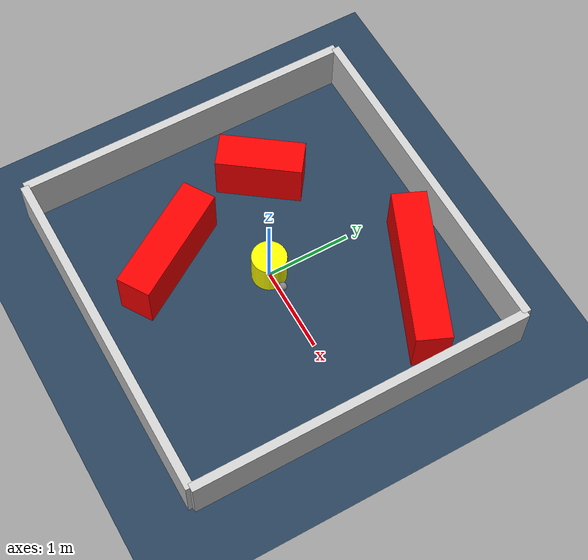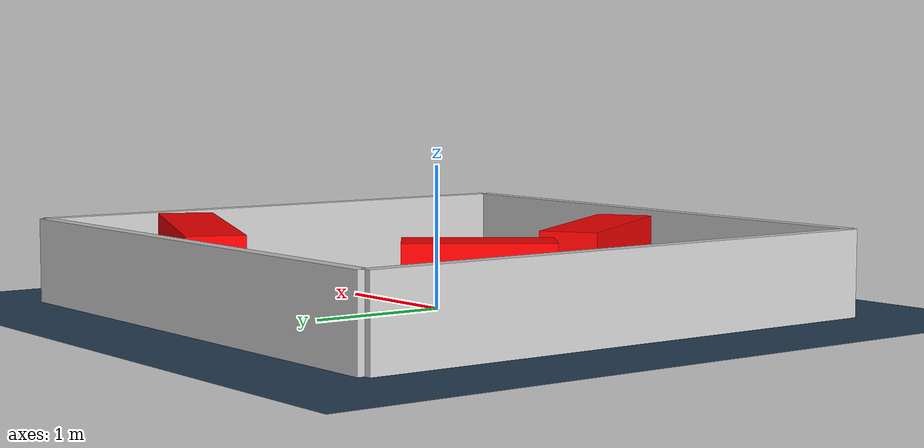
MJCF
<?xml version="1.0" ?>
<mujoco model="generated_environment">
  <option timestep="0.01" integrator="RK4" cone="elliptic"/>
  <default>
    <geom density="1"/>
  </default>
  <asset>
    <texture builtin="gradient" height="3072" rgb1="0.3 0.5 0.7" rgb2="0 0 0" type="skybox" width="512"/>
    <texture builtin="checker" height="300" mark="edge" markrgb="0.8 0.8 0.8" name="groundplane" rgb1="0.2 0.3 0.4" rgb2="0.1 0.2 0.3" type="2d" width="300"/>
    <material name="groundplane" reflectance="0.2" texrepeat="5 5" texture="groundplane" texuniform="true"/>
    <material name="robot" rgba="0.0 1.0 0.0 1"/>
  </asset>
  <worldbody>
    <light dir="0 0 -1" directional="true" pos="0 0 1.5"/>
    <geom condim="4" friction="1.0 0.005 0.001" material="groundplane" name="floor" size="0 0 0.05" type="plane"/>
    <body name="walls">
      <geom name="wall_1" condim="4" pos="-2.0 0.0 0.3" rgba="0.800000011920929 0.800000011920929 0.800000011920929 1.0" size="0.05 2.0 0.3" type="box"/>
      <geom name="wall_2" condim="4" pos="2.0 0.0 0.3" rgba="0.800000011920929 0.800000011920929 0.800000011920929 1.0" size="0.05 2.0 0.3" type="box"/>
      <geom name="wall_3" condim="4" pos="0.0 -2.0 0.3" rgba="0.800000011920929 0.800000011920929 0.800000011920929 1.0" size="2.0 0.05 0.3" type="box"/>
      <geom name="wall_4" condim="4" pos="0.0 2.0 0.3" rgba="0.800000011920929 0.800000011920929 0.800000011920929 1.0" size="2.0 0.05 0.3" type="box"/>
    </body>
    <body name="robot">
      <joint name="joint_x" type="slide" pos="0 0 0" axis="1 0 0"/>
      <joint name="joint_y" type="slide" pos="0 0 0" axis="0 1 0"/>
      <geom name="robot" type="sphere" pos="0.3 0.0 0.2" size="0.05" mass="5." friction="1.0 0.005 0.0001" condim="4" rgba="0.5 0.5 0.5 1.0"/>
      <site name="sensor_ball"/>
    </body>
    <body name="obstacle_movable_1">
      <geom name="obstacle_movable_1" condim="4" pos="0.0 0.0 0.2" euler="0 0 0.0" friction="1.0 0.005 0.001" rgba="1.0 1.0 0.0 1.0" size="0.2 0.2 0.0" type="cylinder" mass="0.1"/>
      <joint type="free"/>
    </body>
    <body name="obstacle_2_static">
      <geom name="obstacle_2_static" condim="4" pos="0.9653540353227856 1.3347752096849874 0.3" euler="0 0 156.7291353908718" friction="1.0 0.005 0.001" rgba="1 0 0 1" size="0.9059522936843498 0.2 0.3" type="box"/>
    </body>
    <body name="obstacle_3_static">
      <geom name="obstacle_3_static" condim="4" pos="-0.6516903567051122 -0.9141470943170877 0.3" euler="0 0 122.08822497422906" friction="1.0 0.005 0.001" rgba="1 0 0 1" size="0.7030978869277088 0.2 0.3" type="box"/>
    </body>
    <body name="obstacle_4_static">
      <geom name="obstacle_4_static" condim="4" pos="-1.1173575501277924 0.5073852175052151 0.3" euler="0 0 53.835334149863066" friction="1.0 0.005 0.001" rgba="1 0 0 1" size="0.49211408821981106 0.2 0.3" type="box"/>
    </body>
  </worldbody>
  <actuator>
    <motor name="actuator_x" joint="joint_x" gear="1" ctrlrange="-1 1"/>
    <motor name="actuator_y" joint="joint_y" gear="1" ctrlrange="-1 1"/>
  </actuator>
</mujoco>
